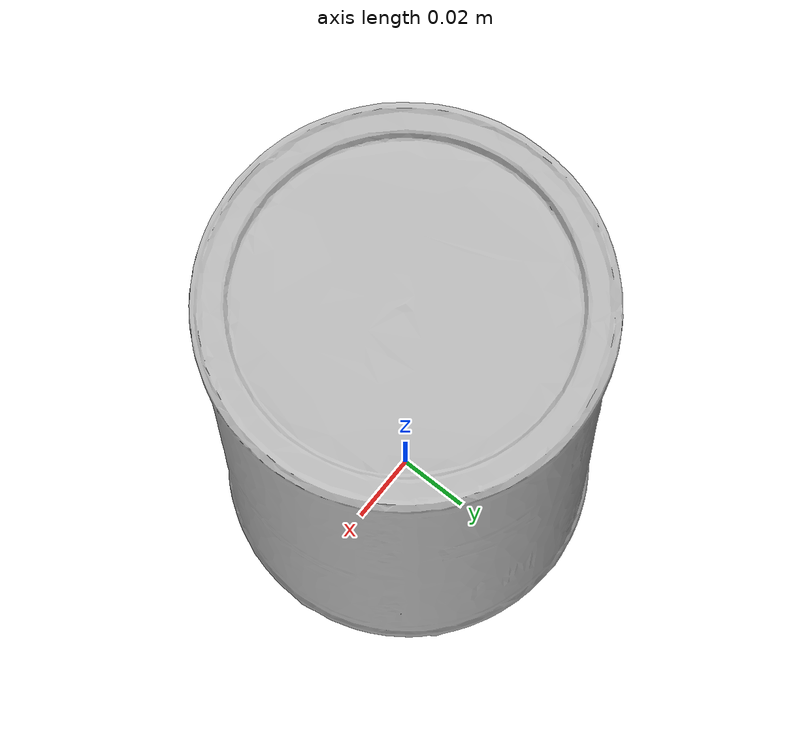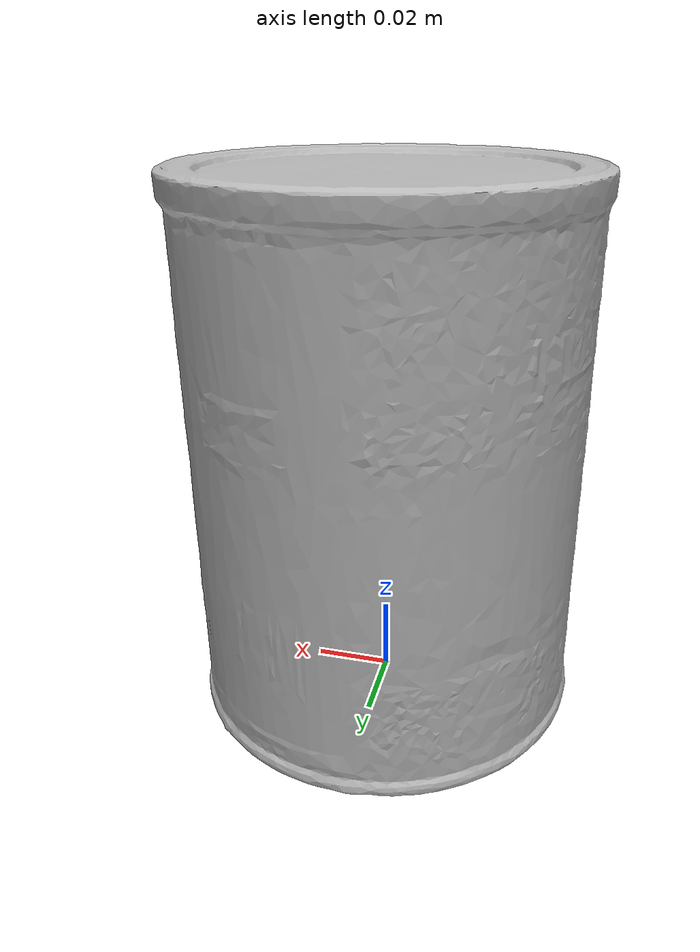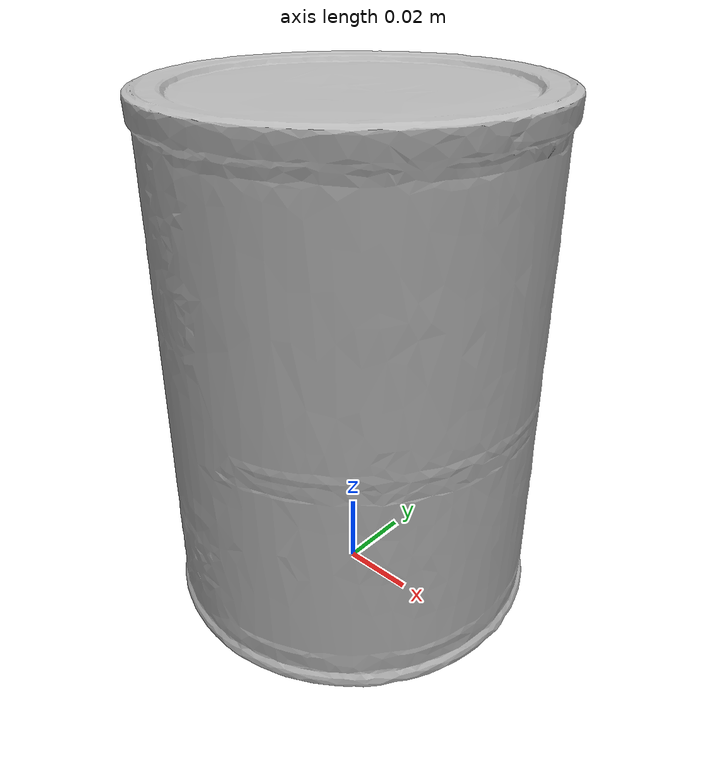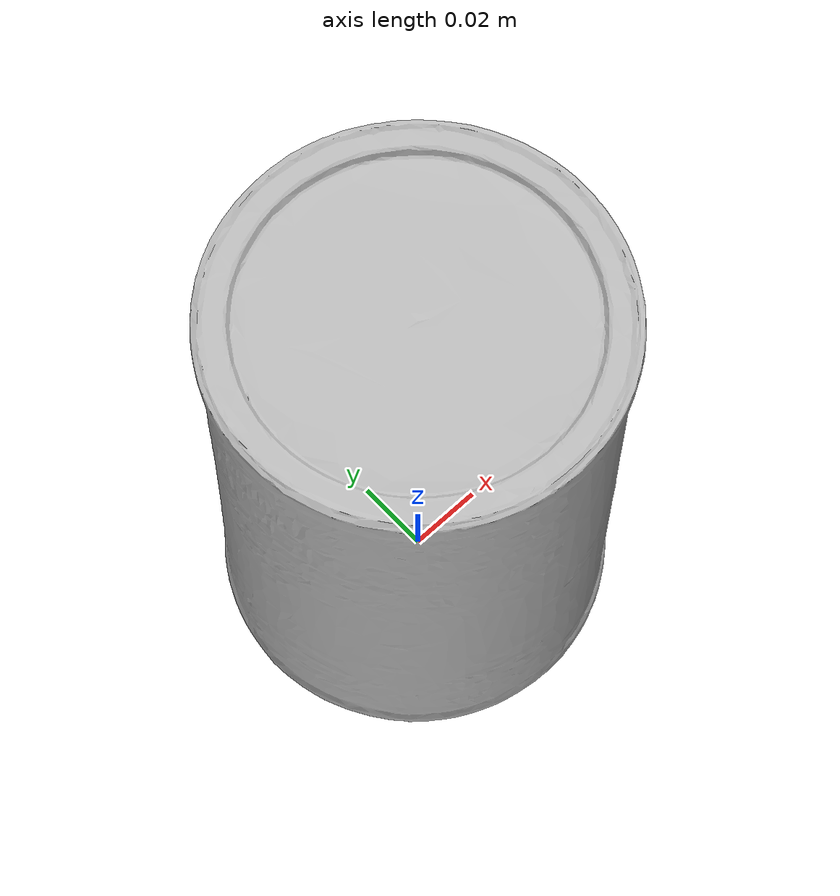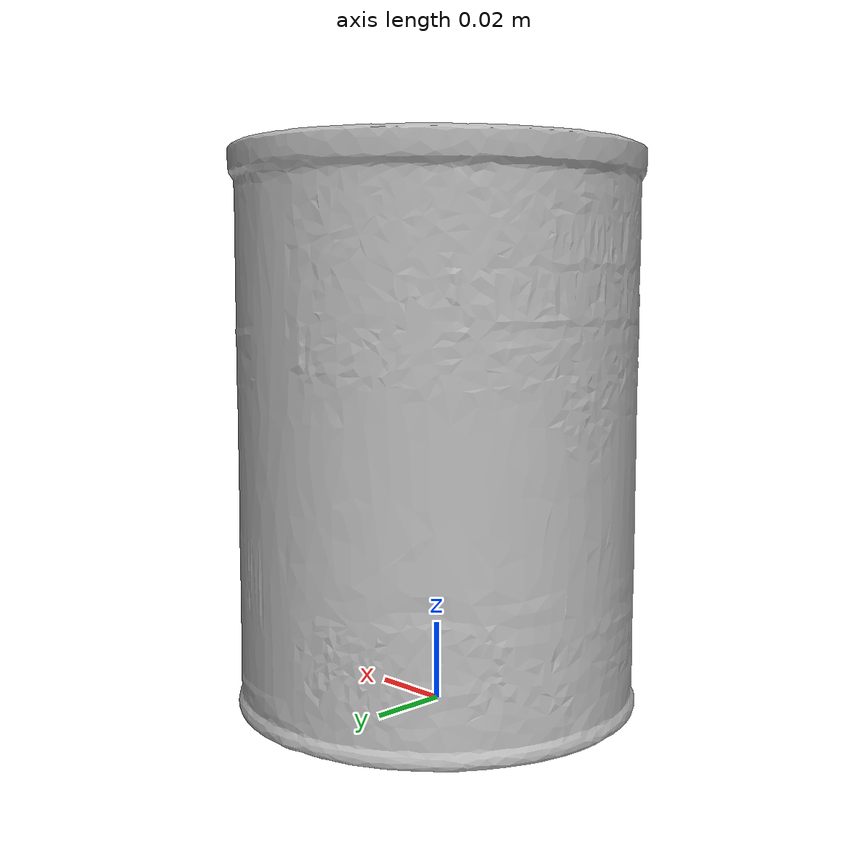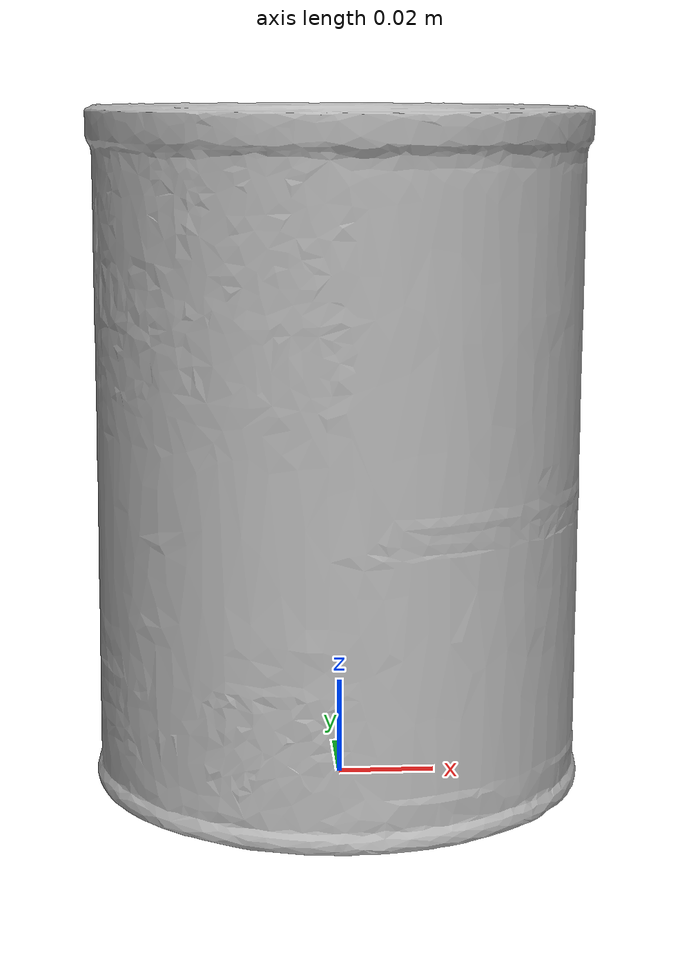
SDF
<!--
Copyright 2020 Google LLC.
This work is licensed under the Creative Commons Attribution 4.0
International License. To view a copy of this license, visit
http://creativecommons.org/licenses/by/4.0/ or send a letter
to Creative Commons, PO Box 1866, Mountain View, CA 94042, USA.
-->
<?xml version="1.0" ?>
<sdf version="1.6">
  <model name="Don_Franciscos_Gourmet_Coffee_Medium_Decaf_100_Colombian_12_oz_340_g">
    <link name="link_0">
      <visual name="visual">
        <geometry>
          <mesh>
            <uri>meshes/model.obj</uri>
          </mesh>
        </geometry>
      </visual>
      <collision name="collision_0">
        <geometry>
          <mesh>
            <uri>meshes/model.obj</uri>
          </mesh>
        </geometry>
      </collision>
    </link>
  </model>
</sdf>
